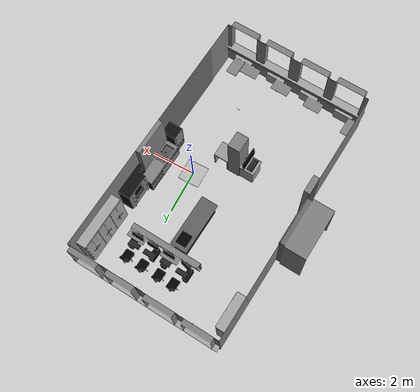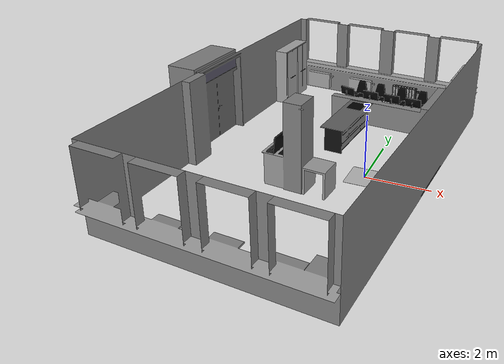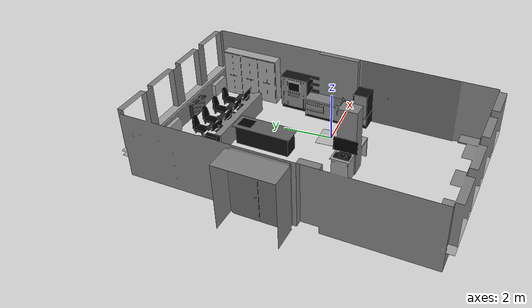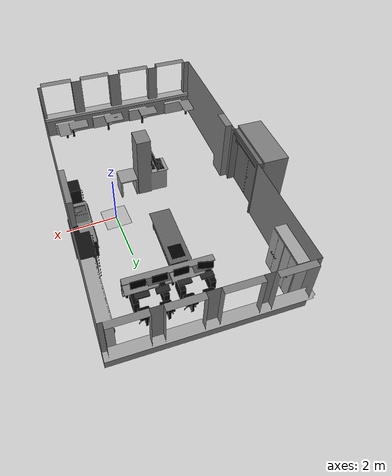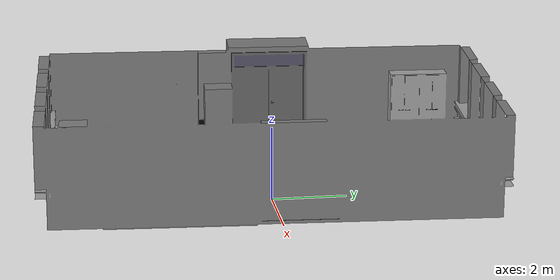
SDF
<?xml version="1.0" encoding="UTF-8" ?>
<sdf version="1.4">
  <world name="default">
    <scene>
      <ambient>0.5 0.5 0.5 1</ambient>
      <background>0.5 0.5 0.5 1</background>
      <shadows>false</shadows>
    </scene>
    <physics type="ode">
      <gravity>0 0 -9.81</gravity>
      <ode>
        <solver>
          <type>quick</type>
          <iters>10</iters>
          <sor>1.3</sor>
        </solver>
        <constraints>
          <cfm>0.0</cfm>
          <erp>0.2</erp>
          <contact_max_correcting_vel>10</contact_max_correcting_vel>
          <contact_surface_layer>0.001</contact_surface_layer>
        </constraints>
      </ode>
      <real_time_update_rate>1000</real_time_update_rate>
      <max_step_size>0.001</max_step_size>
    </physics>
    <light type="directional" name="directional_light_2">
      <pose>0 0 20 0 0 0</pose>
      <diffuse>1 1 1 1</diffuse>
      <specular>1 1 1 1</specular>
      <attenuation>
        <range>300</range>
      </attenuation>
      <direction>-1 1 -1</direction>
      <cast_shadows>false</cast_shadows>
    </light>
    <light type="directional" name="directional_light_3">
      <pose>0 0 20 0 0 0</pose>
      <diffuse>1 1 1 1</diffuse>
      <specular>1 1 1 1</specular>
      <attenuation>
        <range>300</range>
      </attenuation>
      <direction>-1 -1 -1</direction>
      <cast_shadows>false</cast_shadows>
    </light>
    <!-- Ground Plane -->
    <model name="plane1_model">
      <link name="body">
        <collision name="geom_1">
          <geometry>
            <plane>
              <normal>0 0 1</normal>
            </plane>
          </geometry>
          <surface>
            <friction>
              <ode>
                <mu>10.0</mu>
                <mu2>10.0</mu2>
                <fdir1>0 0 0</fdir1>
                <slip1>0</slip1>
                <slip2>0</slip2>
              </ode>
            </friction>
            <bounce>
              <restitution_coefficient>0</restitution_coefficient>
              <threshold>1000000.0</threshold>
            </bounce>
            <contact>
              <ode>
                <soft_cfm>0</soft_cfm>
                <soft_erp>0.2</soft_erp>
                <kp>1e10</kp>
                <kd>1</kd>
                <max_vel>100.0</max_vel>
                <min_depth>0.0001</min_depth>
              </ode>
            </contact>
          </surface>
        </collision>
        <visual name="visual_1">
          <geometry>
            <plane>
              <normal>0 0 1</normal>
            </plane>
          </geometry>
          <material>
            <script>Gazebo/Grey</script>
          </material>
          <cast_shadows>false</cast_shadows>
        </visual>
      </link>
      <static>true</static>
    </model>
    <model name="tum_kitchen">
      <link name="tum_kitchen_link">
        <pose>0 0 0 0 0 0</pose>
        <collision name="tum_kitchen_collision">
          <geometry>
            <mesh>
              <uri>model://media/models/tum_kitchen.dae</uri>
              <scale>1 1 1</scale>
            </mesh>
          </geometry>
        </collision>
        <visual name="tum_kitchen_visual">
          <geometry>
            <mesh>
              <uri>model://media/models/tum_kitchen.dae</uri>
              <scale>1 1 1</scale>
            </mesh>
          </geometry>
          <cast_shadows>false</cast_shadows>
        </visual>
      </link>
      <static>true</static>
    </model>
    <model name="cvg_logo">
      <pose>-1.0 -2.40 3.00 1.571 0.0 0.0</pose>
      <link name="cvg_logo_link">
        <visual name="cvg_logo">
          <geometry>
            <mesh>
              <uri>model://media/models/cvg_logo.dae</uri>
              <scale>5.45 0.95 0.5</scale>
            </mesh>
          </geometry>
          <cast_shadows>false</cast_shadows>
        </visual>
      </link>
      <static>true</static>
    </model>
  </world>
</sdf>
